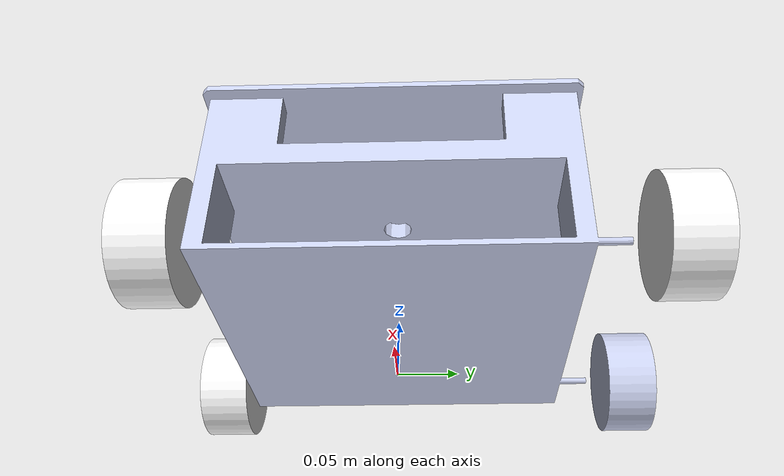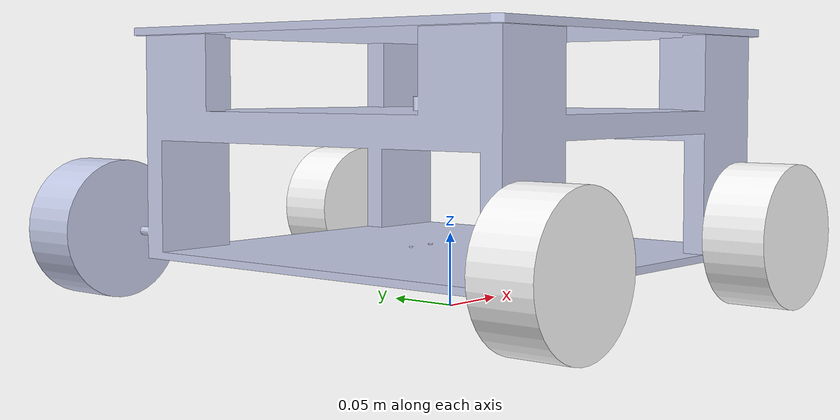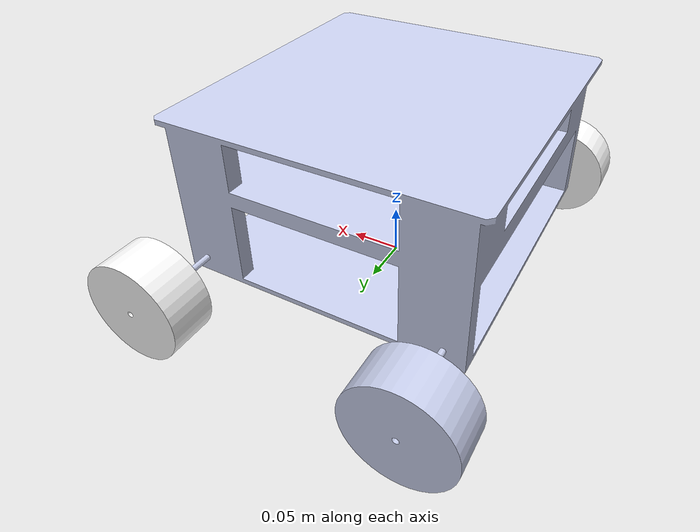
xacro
<?xml version="1.0" encoding="utf-8"?>
<robot xmlns:xacro="http://www.ros.org/wiki/xacro" name="rmitbot">

  <link name="base_footprint"/>

  <joint name="base_link_joint" type="fixed">
    <origin xyz="0 0 0.13" rpy="0 0 0"/>
    <parent link="base_footprint"/>
    <child link="base_link"/>
  </joint>

  <link name="base_link">
    <inertial>
<origin

xyz="-0.000102575363615826 1.27899910523643E-07 -0.048103018145246"

rpy="0 0 0" />
<mass value="9.21834292006588" />
      <inertia
        ixx="0.0860803865758353"
        ixy="-7.67623608449202E-19"
        ixz="7.34761264691378E-19"
        iyy="0.076812301624389"
        iyz="-1.09764490968175E-18"
        izz="0.136212310100817" />
    </inertial>

    <visual>
      <origin xyz="0 0 -0.096" rpy="0 0 0" />
      <geometry>
        <mesh filename="package://rmitbot/meshes/base_footprint.STL" />
      </geometry>
      <material name="chassis_color">
        <color rgba="0.79216 0.81961 0.93333 1" />
      </material>
    </visual>

    <collision>
      <origin xyz="0 0 0" rpy="0 0 0" />
      <geometry>
        <mesh filename="package://rmitbot/meshes/base_footprint.STL" />
      </geometry>
    </collision>
  </link>

  <link name="front_left_wheel">
    <inertial>
      <origin xyz="0 -0.021981 -1.3878E-17" rpy="0 0 0" />
      <mass value="0.32433" />
      <inertia
        ixx="0.00024356" ixy="-7.0365E-23" ixz="-3.468E-20"
        iyy="0.00038242" iyz="-4.7696E-21" izz="0.00024356" />
    </inertial>
    <visual>
      <origin xyz="0 0 0" rpy="0 0 0" />
      <geometry>
        <mesh filename="package://rmitbot/meshes/front_left_wheel.STL" />
      </geometry>
      <material name="wheel_white">
        <color rgba="1 1 1 1" />
      </material>
    </visual>
    <collision>
      <origin xyz="0 0 0" rpy="0 0 0" />
      <geometry>
        <mesh filename="package://rmitbot/meshes/front_left_wheel.STL" />
      </geometry>
    </collision>
  </link>

  <joint name="front_left_wheel_joint" type="continuous">
    <origin xyz="0.125 0.195 -0.08" rpy="0 0 0" />
    <parent link="base_link" />
    <child link="front_left_wheel" />
    <axis xyz="0 1 0" />
    <dynamics damping="0.2" />
  </joint>

  <link name="front_right_wheel">
    <inertial>
      <origin xyz="0 0.021981 0" rpy="0 0 0" />
      <mass value="0.32433" />
      <inertia
        ixx="0.00024356" ixy="4.4151E-23" ixz="3.3128E-23"
        iyy="0.00038242" iyz="-1.002E-20" izz="0.00024356" />
    </inertial>
    <visual>
      <origin xyz="0 0 0" rpy="0 0 0" />
      <geometry>
        <mesh filename="package://rmitbot/meshes/front_right_wheel.STL" />
      </geometry>
      <material name="wheel_white"/>
    </visual>
    <collision>
      <origin xyz="0 0 0" rpy="0 0 0" />
      <geometry>
        <mesh filename="package://rmitbot/meshes/front_right_wheel.STL" />
      </geometry>
    </collision>
  </link>

  <joint name="front_right_wheel_joint" type="continuous">
    <origin xyz="0.125 -0.195 -0.08" rpy="0 0 0" />
    <parent link="base_link" />
    <child link="front_right_wheel" />
    <axis xyz="0 1 0" />
    <dynamics damping="0.2" />
  </joint>

  <link name="rear_left_wheel">
    <inertial>
      <origin xyz="0 -0.021981 0" rpy="0 0 0" />
      <mass value="0.32433" />
      <inertia
        ixx="0.00024356" ixy="2.4613E-21" ixz="1.3091E-20"
        iyy="0.00038242" iyz="2.4994E-23" izz="0.00024356" />
    </inertial>
    <visual>
      <origin xyz="0 0 0" rpy="0 0 0" />
      <geometry>
        <mesh filename="package://rmitbot/meshes/rear_left_wheel.STL" />
      </geometry>
      <material name="chassis_color"/>
    </visual>
    <collision>
      <origin xyz="0 0 0" rpy="0 0 0" />
      <geometry>
        <mesh filename="package://rmitbot/meshes/rear_left_wheel.STL" />
      </geometry>
    </collision>
  </link>

  <joint name="rear_left_wheel_joint" type="continuous">
    <origin xyz="-0.125 0.195 -0.08" rpy="0 0 0" />
    <parent link="base_link" />
    <child link="rear_left_wheel" />
    <axis xyz="0 1 0" />
    <dynamics damping="0.2" />
  </joint>

  <link name="rear_right_wheel">
    <inertial>
      <origin xyz="0 0.021981 0" rpy="0 0 0" />
      <mass value="0.32433" />
      <inertia
        ixx="0.00024356" ixy="-2.3748E-21" ixz="-2.4754E-20"
        iyy="0.00038242" iyz="9.7442E-21" izz="0.00024356" />
    </inertial>
    <visual>
      <origin xyz="0 0 0" rpy="0 0 0" />
      <geometry>
        <mesh filename="package://rmitbot/meshes/rear_right_wheel.STL" />
      </geometry>
      <material name="wheel_white"/>
    </visual>
    <collision>
      <origin xyz="0 0 0" rpy="0 0 0" />
      <geometry>
        <mesh filename="package://rmitbot/meshes/rear_right_wheel.STL" />
      </geometry>
    </collision>
  </link>

  <joint name="rear_right_wheel_joint" type="continuous">
    <origin xyz="-0.125 -0.195 -0.08" rpy="0 0 0" />
    <parent link="base_link" />
    <child link="rear_right_wheel" />
    <axis xyz="0 1 0" />
    <dynamics damping="0.2" />
  </joint>

</robot>
